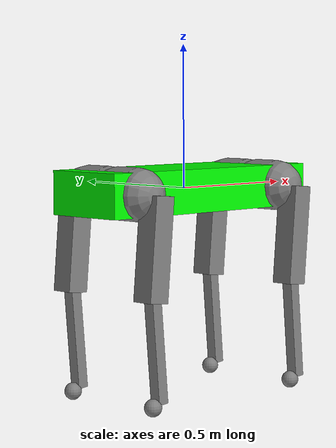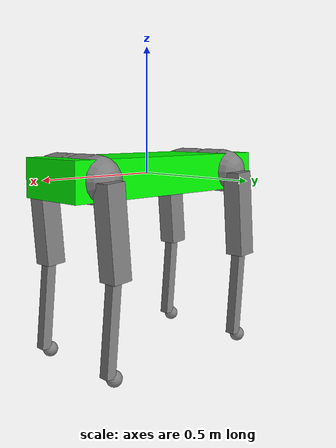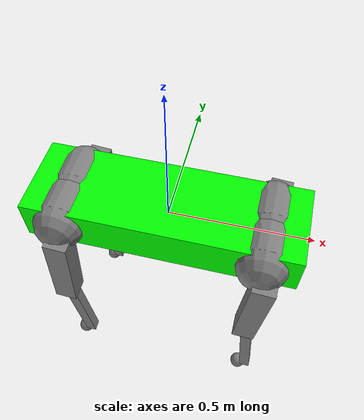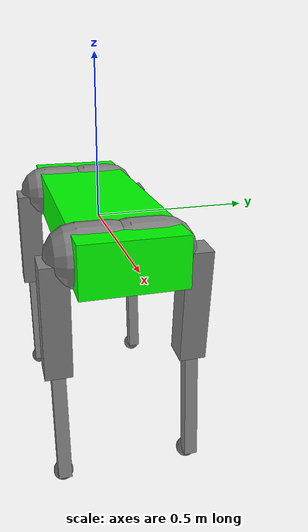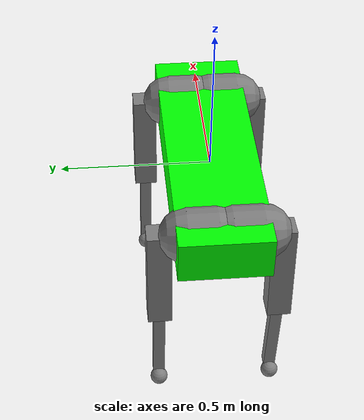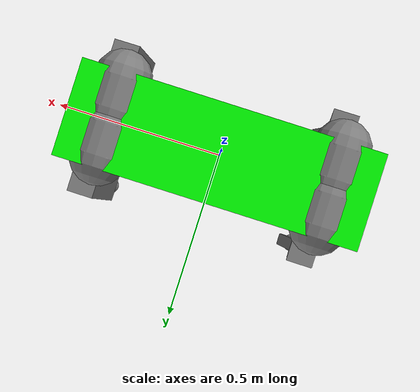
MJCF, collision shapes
<mujoco model="b1">
  <compiler angle="radian" autolimits="true" balanceinertia="true"/>
  <option gravity="0 0 0"/>
  <contact>
    <exclude name="exclude_two_front_hips" body1="FR_hip" body2="FL_hip"/>
    <exclude name="exclude_two_rear_hips" body1="RR_hip" body2="RL_hip"/>
  </contact>
  <default>
    <default class="b1">
      <geom friction="0.6" margin="0.001"/>
      <joint axis="0 1 0" damping="2" armature="0.01" frictionloss="0.2"/>
      <motor forcerange="-33.5 33.5" ctrllimited="true"/>
    </default>
    <default class="abduction">
      <geom friction="0.6" margin="0.001"/>
      <joint axis="1 0 0" damping="2" range="-0.75 0.75" armature="0.01" frictionloss="0.2" limited="true"/>
      <motor ctrlrange="-33.5 33.5" ctrllimited="true"/>
    </default>
    <default class="hip">
      <geom friction="0.6" margin="0.001"/>
      <joint axis="0 1 0" range="-0.75 0.75" armature="0.01" frictionloss="0.2" limited="true"/>
      <motor ctrlrange="-100.0 100.0" ctrllimited="true"/>
    </default>
    <default class="knee">
      <geom friction="0.6" margin="0.001"/>
      <joint axis="0 1 0" range="-2.6 -0.6" armature="0.01" frictionloss="0.2" limited="true"/>
      <motor ctrlrange="-33.5 33.5"  ctrllimited="true"/>
    </default>
    <default class="visual">
      <geom type="mesh" contype="0" conaffinity="0" group="1" material="default_material"/>
    </default>
    <default class="collision">
      <geom group="0" type="capsule" rgba="0 1 0 0.8"/>
      <joint axis="0 1 0" damping="2" armature="0.01" frictionloss="0.2"/>
      <motor forcerange="-33.5 33.5" />
    </default>
    <default class="hip_left">
      <geom size="0.09" fromto="0.0 0.04 0 0.0 -0.06 0" group="0" type="capsule"/>
      <joint axis="0 1 0" damping="2" armature="0.01" frictionloss="0.2"/>
      <motor forcerange="-33.5 33.5"/>
    </default>
    <default class="hip_right">
      <geom size="0.09" fromto="0.0 0.04 0 0.0 -0.06 0" group="0" type="capsule"/>
      <joint axis="0 1 0" damping="2" armature="0.01" frictionloss="0.2"/>
      <motor forcerange="-33.5 33.5"/>
    </default>
    <default class="thigh1">
      <geom size="0.04 0.025 0.08" fromto="0.02 0 0 -0.01 0 -0.35" group="0" type="box"/>
      <joint axis="0 1 0" damping="2" armature="0.01" frictionloss="0.2"/>
      <motor forcerange="-33.5 33.5"/>
    </default>
    <default class="calf1">
      <geom size="0.02 0.015 0.08" fromto="0.0 0 0 0.03 0 -0.34" group="0" type="box"/>
      <joint axis="0 1 0" damping="2" armature="0.01" frictionloss="0.2"/>
      <motor forcerange="-33.5 33.5"/>
    </default>
    <default class="foot">
      <geom type="sphere" size="0.03" pos="0 0 0" priority="1" solimp="0.015 1 0.031"
          condim="6" friction="0.8 0.02 0.01" group="0"/>
      <joint axis="0 1 0" damping="2" armature="0.01" frictionloss="0.2"/>
      <motor forcerange="-33.5 33.5"/>
    </default>
  </default>

  <asset>
    <material name="default_material" specular="0" shininess="0.1" rgba="0.4 0.4 0.4 1"/>

    <mesh name="calf" class="b1" file="meshes/calf.obj"/>
    <mesh name="hip" class="b1" file="meshes/hip.obj"/>
    <mesh name="thigh" class="b1" file="meshes/thigh.obj"/>
    <mesh name="thigh_mirror" class="b1" file="meshes/thigh_mirror.obj"/>
    <mesh name="trunk" class="b1" file="meshes/trunk.obj"/>
  </asset>

  <worldbody>
    <body name="base" pos="0 0 0">
      <freejoint/>
      <inertial mass="9.041" pos="0.008465 0.004045 -0.000763"
	  fullinertia="0.033260231 0.16117211 0.17460442 -0.000451628
			0.000487603 4.8356e-05"/>
      <geom class="visual" mesh="trunk" material="default_material"/>
      <geom class="collision" size="0.47 0.15 0.075" type="box"/>
      <body name="fixed_support" pos="0.15 0 0.08">
				<body name="support" pos="0.0 0.0 0.0">
                    <!-- add robot here -->
                    <site name="center" type="sphere" pos="0 0 0" size="0.01" group="1" rgba="0 0 0 0"/>
                </body>
            </body>

      <!-- FR leg -->
      <body name="FR_leg">
        <site name="FR_center" pos="0 0 0" size="0.01" rgba="1 0.3 0.3 1" group="2"/>
        <body name="FR_hip" pos="0.3455 -0.072 0">
          <inertial mass="1.993" pos="-0.022191 -0.015144 -1.5e-05"
              diaginertia="0.000807752 0.00055293 0.000468983"/>
              <!-- quat="0.507528 0.506268 0.491507 0.494499" -->
          <joint class="abduction" name="FR_hip_leg_joint" pos="0 0 0"/>
          <geom class="visual" mesh="hip" quat="0 1 0 0"/>
          <geom class="hip_right"/>
          <body name="FR_thigh" pos="0 -0.12675 0">
            <inertial mass="0.639" pos="-0.005607 0.003877 -0.048199"
                quat="1 0 0 0"
                diaginertia="0.005666803 0.005847229 0.000369811"/>
            <joint class="hip" name="FR_thigh_leg_joint"/>
            <geom class="visual" mesh="thigh_mirror"/>
            <geom class="thigh1"/>
            <body name="FR_calf" pos="0 0 -0.35">
              <inertial mass="0.207" pos="0.002781 6.3e-05 -0.142518"
                  quat="1 0 0 0"
                  diaginertia="0.006341369 0.006355157 3.9188e-05"/>
              <joint class="knee" name="FR_calf_leg_joint"/>
              <geom class="visual" mesh="calf"/>
              <geom class="calf1"/>
            <body name="FR_foot" pos="0 0 -0.35">
                    <geom name="FR" class="foot"/>
            </body>
            </body>
          </body>
        </body>
      </body>
      <!-- End of FR leg -->

      <!-- FL leg -->
      <body name="FL_leg">
        <site name="FL_center" pos="0 0 0" size="0.01" rgba="1 0.3 0.3 1" group="2"/>
        <body name="FL_hip" pos="0.3455 0.072 0">
          <inertial mass="1.993" pos="-0.022191 -0.015144 -1.5e-05"
              diaginertia="0.000807752 0.00055293 0.000468983"/>
          <joint class="abduction" name="FL_hip_leg_joint" pos="0 0 0"/>
          <geom class="visual" mesh="hip" quat="0 1 0 0"/>
          <geom class="hip_right"/>
          <body name="FL_thigh" pos="0 0.12675 0">
            <inertial mass="0.639" pos="-0.005607 0.003877 -0.048199"
                quat="1 0 0 0"
                diaginertia="0.005666803 0.005847229 0.000369811"/>
            <joint class="hip" name="FL_thigh_leg_joint"/>
            <geom class="visual" mesh="thigh"/>
            <geom class="thigh1"/>
            <body name="FL_calf" pos="0 0 -0.35">
              <inertial mass="0.207" pos="0.002781 6.3e-05 -0.142518"
                  quat="1 0 0 0"
                  diaginertia="0.006341369 0.006355157 3.9188e-05"/>
              <joint class="knee" name="FL_calf_leg_joint"/>
              <geom class="visual" mesh="calf"/>
              <geom class="calf1"/>
              <body name="FL_foot" pos="0 0 -0.35">
                      <geom name="FL" class="foot"/>
              </body>
            </body>
          </body>
        </body>
      </body>
      <!-- End of FL leg -->

      <!-- RR leg -->
      <body name="RR_leg">
        <site name="RR_center" pos="0 0 0" size="0.01" rgba="1 0.3 0.3 1" group="2"/>
        <body name="RR_hip" pos="-0.3455 -0.072 0">
          <inertial mass="1.993" pos="-0.022191 -0.015144 -1.5e-05"
              diaginertia="0.000807752 0.00055293 0.000468983"/>
              <!-- quat="0.507528 0.506268 0.491507 0.494499" -->
          <joint class="abduction" name="RR_hip_leg_joint" pos="0 0 0"/>
          <geom class="visual" mesh="hip" quat="0 1 0 0"/>
          <geom class="hip_right"/>
          <body name="RR_thigh" pos="0 -0.12675 0">
            <inertial mass="0.639" pos="-0.005607 0.003877 -0.048199"
                quat="1 0 0 0"
                diaginertia="0.005666803 0.005847229 0.000369811"/>
            <joint class="hip" name="RR_thigh_leg_joint"/>
            <geom class="visual" mesh="thigh_mirror"/>
            <geom class="thigh1"/>
            <body name="RR_calf" pos="0 0 -0.35">
              <inertial mass="0.207" pos="0.002781 6.3e-05 -0.142518"
                  quat="1 0 0 0"
                  diaginertia="0.006341369 0.006355157 3.9188e-05"/>
              <joint class="knee" name="RR_calf_leg_joint"/>
              <geom class="visual" mesh="calf"/>
              <geom class="calf1"/>
              <body name="RR_foot" pos="0 0 -0.35">
                      <geom name="RR" class="foot"/>
              </body>
            </body>
          </body>
        </body>
      </body>
      <!-- End of RR leg -->

      <!-- RL leg -->
      <body name="RL_leg">
        <site name="RL_center" pos="0 0 0" size="0.01" rgba="1 0.3 0.3 1" group="2"/>
        <body name="RL_hip" pos="-0.3455 0.072 0">
          <inertial mass="1.993" pos="-0.022191 -0.015144 -1.5e-05"
              diaginertia="0.000807752 0.00055293 0.000468983"/>
          <joint class="abduction" name="RL_hip_leg_joint" pos="0 0 0"/>
          <geom class="visual" mesh="hip" quat="0 1 0 0"/>
          <geom class="hip_right"/>
          <body name="RL_thigh" pos="0 0.12675 0">
            <inertial mass="0.639" pos="-0.005607 0.003877 -0.048199"
                quat="1 0 0 0"
                diaginertia="0.005666803 0.005847229 0.000369811"/>
            <joint class="hip" name="RL_thigh_leg_joint"/>
            <geom class="visual" mesh="thigh"/>
            <geom class="thigh1"/>
            <body name="RL_calf" pos="0 0 -0.35">
              <inertial mass="0.207" pos="0.002781 6.3e-05 -0.142518"
                  quat="1 0 0 0"
                  diaginertia="0.006341369 0.006355157 3.9188e-05"/>
              <joint class="knee" name="RL_calf_leg_joint"/>
              <geom class="visual" mesh="calf"/>
              <geom class="calf1"/>
              <body name="RL_foot" pos="0 0 -0.35">
                      <geom name="RL" class="foot"/>
              </body>
            </body>
          </body>
        </body>
      </body>
      <!-- End of RL leg -->
    </body>

  </worldbody>

  <actuator>
    <motor class="abduction" name="FR_hip_leg" joint="FR_hip_leg_joint"/>
    <motor class="hip" name="FR_thigh_leg" joint="FR_thigh_leg_joint"/>
    <motor class="knee" name="FR_calf_leg" joint="FR_calf_leg_joint"/>
    <motor class="abduction" name="FL_hip_leg" joint="FL_hip_leg_joint"/>
    <motor class="hip" name="FL_thigh_leg" joint="FL_thigh_leg_joint"/>
    <motor class="knee" name="FL_calf_leg" joint="FL_calf_leg_joint"/>
    <motor class="abduction" name="RR_hip_leg" joint="RR_hip_leg_joint"/>
    <motor class="hip" name="RR_thigh_leg" joint="RR_thigh_leg_joint"/>
    <motor class="knee" name="RR_calf_leg" joint="RR_calf_leg_joint"/>
    <motor class="abduction" name="RL_hip_leg" joint="RL_hip_leg_joint"/>
    <motor class="hip" name="RL_thigh_leg" joint="RL_thigh_leg_joint"/>
    <motor class="knee" name="RL_calf_leg" joint="RL_calf_leg_joint"/>
  </actuator>

  <keyframe>
    <key name="home" qpos="0 0 0.27 1 0 0 0 0 0.9 -1.8 0 0.9 -1.8 0 0.9 -1.8 0 0.9 -1.8"
        ctrl="0 0.9 -1.8 0 0.9 -1.8 0 0.9 -1.8 0 0.9 -1.8"/>
  </keyframe>

</mujoco>
